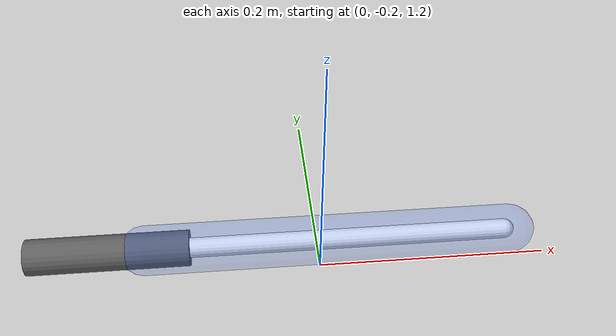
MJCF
<mujoco model="left_lightsaber">
  <compiler angle="radian"/>
  <option timestep="0.002"/>
  <asset>
    <material name="left_saber_blue_core" rgba="0.02 0.30 1.0 1.0" emission="2" specular="0.05" shininess="0.05"/>
    <material name="left_saber_blue_aura" rgba="0.1 0.35 1.0 0.05" emission="2"/>
  </asset>
  <worldbody>
    <body name="left_lightsaber" pos="-0.26 -0.12 1.15" quat="0.7071067811865476 0.0 0.7071067811865476 0.0">
      <freejoint name="left_saber_freejoint"/>
      <geom name="left_saber_hilt" type="cylinder" pos="0 0 0.06" quat="1 0 0 0" size="0.018 0.08 0" rgba="0.4 0.4 0.4 1" mass="0.5" contype="1" conaffinity="1" condim="4"/>
      <geom name="left_saber_geom" type="capsule" pos="0 0 0.28" quat="1 0 0 0" size="0.01 0.18 0" rgba="1.0 1.0 1.0 1.0" mass="0.001" contype="1" conaffinity="1" condim="4" material="left_saber_blue_core" friction="0.01 0.005 0.0001"/>
      <geom name="left_blade_aura" type="capsule" pos="0 0 0.28" quat="1 0 0 0" size="0.025 0.185 0" rgba="0.10 0.35 1.0 0.09" contype="0" conaffinity="0" material="left_saber_blue_aura"/>
      <light name="left_saber_light" pos="0 0 0.35" dir="0 0 1" diffuse="0.0 0.5 1.0" specular="0.0 0.5 1.0" range="2.75" cutoff="180" castshadow="true"/>
      <site name="left_saber_tip" pos="0 0 0.46" size="0.01 0 0" rgba="0.2 0.8 1.0 0.2"/>
      <site name="left_saber_blade_base" pos="0 0 0.10000000000000003" size="0.01 0 0" rgba="0.2 0.8 1.0 0.0"/>
    </body>
  </worldbody>
  <sensor>
    <framelinvel name="left_saber_tip_linvel" objtype="site" objname="left_saber_tip"/>
    <velocimeter name="left_saber_tip_velocimeter" site="left_saber_tip"/>
  </sensor>
</mujoco>
